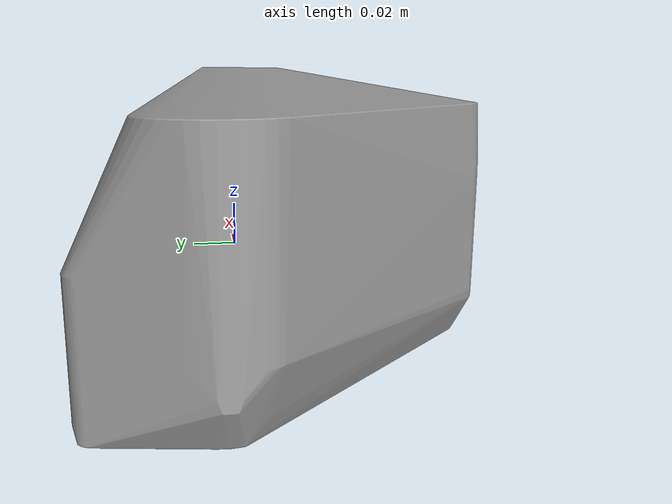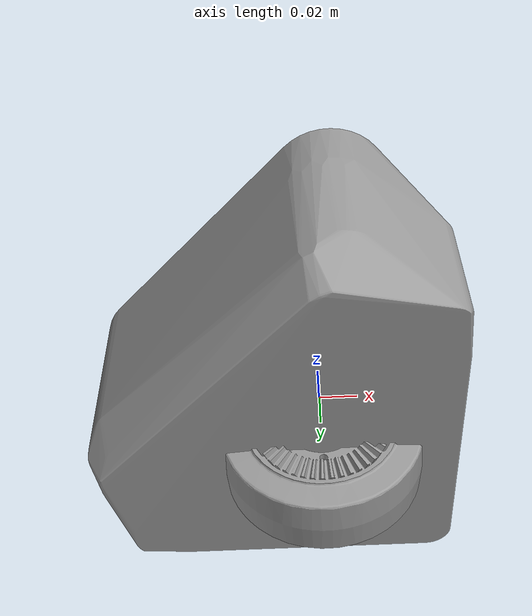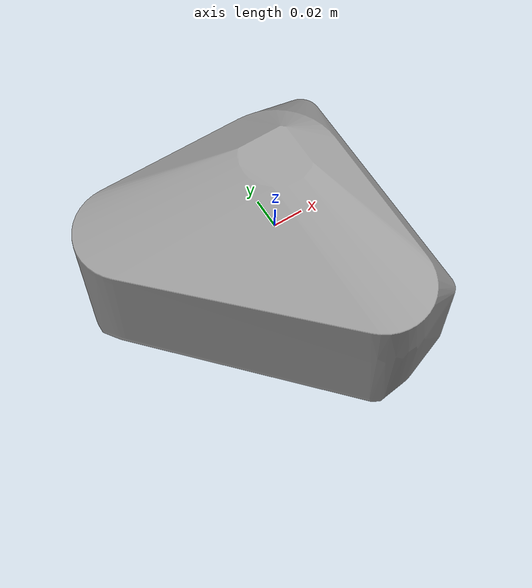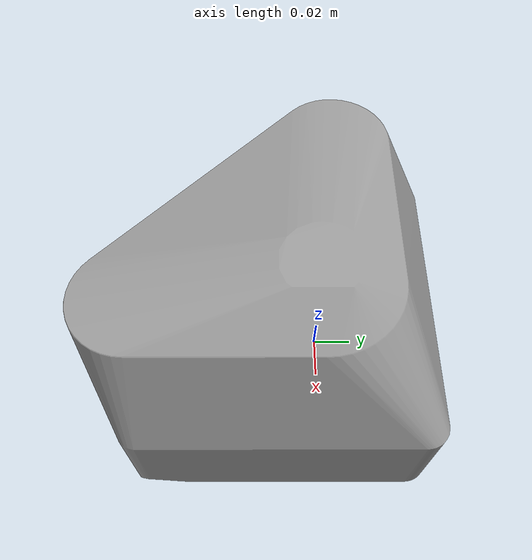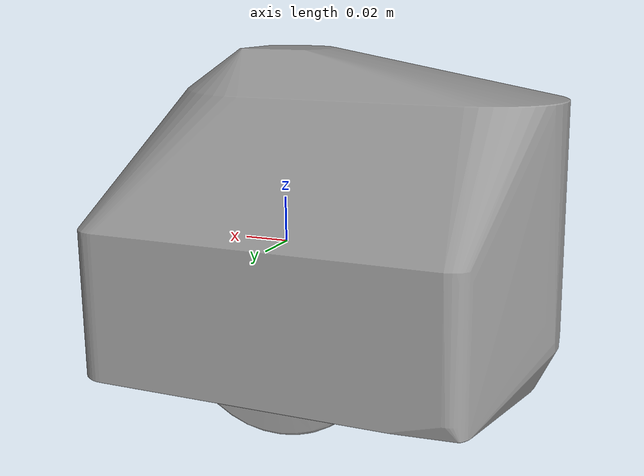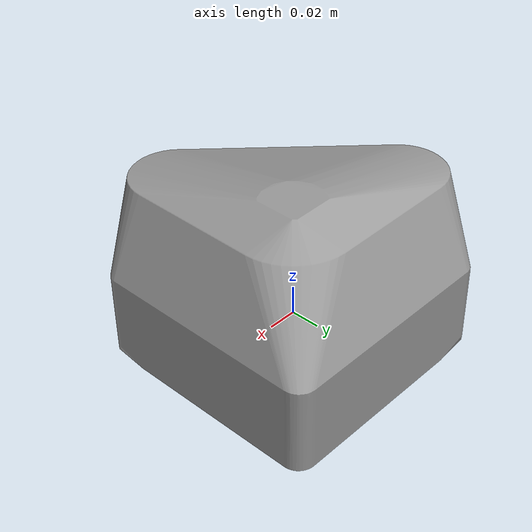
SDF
<?xml version="1.0" ?>
<!-- |    This document was autogenerated by xacro from model.xacro                    | -->
<!-- |    EDITING THIS FILE BY HAND IS NOT RECOMMENDED                                 | -->
<sdf version="1.7">
  <model name="SDS_Module">
    <pose>0 0 0 0 0 0</pose>
    <link name="SDS_Module_Fixed">
      <inertial>
        <mass>2.268</mass>
        <inertia>
          <ixx>0.00760197</ixx>
          <ixy>0</ixy>
          <ixz>0</ixz>
          <iyy>0.00779099</iyy>
          <iyz>0</iyz>
          <izz>0.01281875</izz>
        </inertia>
        <pose>0 0 0 0 -0 0</pose>
      </inertial>
      <pose>6.9e-05 0 0.008921 0 -0 0</pose>
      <gravity>1</gravity>
      <self_collide>0</self_collide>
      <kinematic>0</kinematic>
      <enable_wind>0</enable_wind>
      <visual name="visual">
        <pose>0 0 0 0 -0 0</pose>
        <geometry>
          <mesh>
            <uri>/home/ajahueym/Documents/Gits/Overture-ROS/src/robot_simulation/models/SDS_Module/SDS_Fixed.dae</uri>
            <scale>1 1 1</scale>
          </mesh>
        </geometry>
        <material>
          <lighting>1</lighting>
          <script>
            <uri>file://media/materials/scripts/gazebo.material</uri>
            <name>Gazebo/Grey</name>
          </script>
          <shader type="pixel">
            <normal_map>__default__</normal_map>
          </shader>
          <ambient>0.3 0.3 0.3 1</ambient>
          <diffuse>0.7 0.7 0.7 1</diffuse>
          <specular>0.01 0.01 0.01 1</specular>
          <emissive>0 0 0 1</emissive>
        </material>
        <transparency>0</transparency>
        <cast_shadows>1</cast_shadows>
      </visual>
      <collision name="collision">
        <laser_retro>0</laser_retro>
        <max_contacts>10</max_contacts>
        <pose>0 0 0 0 -0 0</pose>
        <geometry>
          <mesh>
            <uri>/home/ajahueym/Documents/Gits/Overture-ROS/src/robot_simulation/models/SDS_Module/SDS_Fixed_Collision.dae</uri>
            <scale>1 1 1</scale>
          </mesh>
        </geometry>
        <surface>
          <friction>
            <ode>
              <mu>1</mu>
              <mu2>1</mu2>
              <fdir1>0 0 0</fdir1>
              <slip1>0</slip1>
              <slip2>0</slip2>
            </ode>
            <torsional>
              <coefficient>1</coefficient>
              <patch_radius>0</patch_radius>
              <surface_radius>0</surface_radius>
              <use_patch_radius>1</use_patch_radius>
              <ode>
                <slip>0</slip>
              </ode>
            </torsional>
          </friction>
          <bounce>
            <restitution_coefficient>0</restitution_coefficient>
            <threshold>1e+06</threshold>
          </bounce>
          <contact>
            <collide_without_contact>0</collide_without_contact>
            <collide_without_contact_bitmask>1</collide_without_contact_bitmask>
            <collide_bitmask>1</collide_bitmask>
            <ode>
              <soft_cfm>0</soft_cfm>
              <soft_erp>0.2</soft_erp>
              <kp>1e+13</kp>
              <kd>1</kd>
              <max_vel>0.01</max_vel>
              <min_depth>0</min_depth>
            </ode>
            <bullet>
              <split_impulse>1</split_impulse>
              <split_impulse_penetration_threshold>-0.01</split_impulse_penetration_threshold>
              <soft_cfm>0</soft_cfm>
              <soft_erp>0.2</soft_erp>
              <kp>1e+13</kp>
              <kd>1</kd>
            </bullet>
          </contact>
        </surface>
      </collision>
    </link>
    <link name="SDS_Module_Rotation">
      <inertial>
        <mass>0.59</mass>
        <inertia>
          <ixx>0.0006558</ixx>
          <ixy>0</ixy>
          <ixz>0</ixz>
          <iyy>0.00065583</iyy>
          <iyz>0</iyz>
          <izz>0.00074316</izz>
        </inertia>
        <pose>0 0 0 0 -0 0</pose>
      </inertial>
      <pose>6.9e-05 0 0.026037 0 -0 0</pose>
      <gravity>1</gravity>
      <self_collide>0</self_collide>
      <kinematic>0</kinematic>
      <enable_wind>0</enable_wind>
      <visual name="visual">
        <pose>0 0 0 0 -0 0</pose>
        <geometry>
          <mesh>
            <uri>/home/ajahueym/Documents/Gits/Overture-ROS/src/robot_simulation/models/SDS_Module/SDS_Rotation.dae</uri>
            <scale>1 1 1</scale>
          </mesh>
        </geometry>
        <material>
          <lighting>1</lighting>
          <script>
            <uri>file://media/materials/scripts/gazebo.material</uri>
            <name>Gazebo/Grey</name>
          </script>
          <shader type="pixel">
            <normal_map>__default__</normal_map>
          </shader>
          <ambient>0.3 0.3 0.3 1</ambient>
          <diffuse>0.7 0.7 0.7 1</diffuse>
          <specular>0.01 0.01 0.01 1</specular>
          <emissive>0 0 0 1</emissive>
        </material>
        <transparency>0</transparency>
        <cast_shadows>1</cast_shadows>
      </visual>
      <collision name="collision">
        <laser_retro>0</laser_retro>
        <max_contacts>10</max_contacts>
        <pose>0 0 0 0 -0 0</pose>
        <geometry>
          <mesh>
            <uri>/home/ajahueym/Documents/Gits/Overture-ROS/src/robot_simulation/models/SDS_Module/SDS_Rotation_Collision.dae</uri>
            <scale>1 1 1</scale>
          </mesh>
        </geometry>
        <surface>
          <friction>
            <ode>
              <mu>1</mu>
              <mu2>1</mu2>
              <fdir1>0 0 0</fdir1>
              <slip1>0</slip1>
              <slip2>0</slip2>
            </ode>
            <torsional>
              <coefficient>1</coefficient>
              <patch_radius>0</patch_radius>
              <surface_radius>0</surface_radius>
              <use_patch_radius>1</use_patch_radius>
              <ode>
                <slip>0</slip>
              </ode>
            </torsional>
          </friction>
          <bounce>
            <restitution_coefficient>0</restitution_coefficient>
            <threshold>1e+06</threshold>
          </bounce>
          <contact>
            <collide_without_contact>0</collide_without_contact>
            <collide_without_contact_bitmask>1</collide_without_contact_bitmask>
            <collide_bitmask>1</collide_bitmask>
            <ode>
              <soft_cfm>0</soft_cfm>
              <soft_erp>0.2</soft_erp>
              <kp>1e+13</kp>
              <kd>1</kd>
              <max_vel>0.01</max_vel>
              <min_depth>0</min_depth>
            </ode>
            <bullet>
              <split_impulse>1</split_impulse>
              <split_impulse_penetration_threshold>-0.01</split_impulse_penetration_threshold>
              <soft_cfm>0</soft_cfm>
              <soft_erp>0.2</soft_erp>
              <kp>1e+13</kp>
              <kd>1</kd>
            </bullet>
          </contact>
        </surface>
      </collision>
    </link>
    <link name="SDS_Module_Wheel">
      <inertial>
        <mass>0.24</mass>
        <inertia>
          <ixx>0.00025496</ixx>
          <ixy>0</ixy>
          <ixz>0</ixz>
          <iyy>0.00025496</iyy>
          <iyz>0</iyz>
          <izz>0.00018653</izz>
        </inertia>
        <pose>0 0 0 0 -0 0</pose>
      </inertial>
      <pose>-0.000137 0 -0.034957 0 -0 0</pose>
      <gravity>1</gravity>
      <self_collide>0</self_collide>
      <kinematic>0</kinematic>
      <enable_wind>0</enable_wind>
      <visual name="visual">
        <pose>0 0 0 0 -0 0</pose>
        <geometry>
          <mesh>
            <uri>/home/ajahueym/Documents/Gits/Overture-ROS/src/robot_simulation/models/SDS_Module/SDS_Wheel.dae</uri>
            <scale>1 1 1</scale>
          </mesh>
        </geometry>
        <material>
          <lighting>1</lighting>
          <script>
            <uri>file://media/materials/scripts/gazebo.material</uri>
            <name>Gazebo/Grey</name>
          </script>
          <shader type="pixel">
            <normal_map>__default__</normal_map>
          </shader>
          <ambient>0.3 0.3 0.3 1</ambient>
          <diffuse>0.7 0.7 0.7 1</diffuse>
          <specular>0.01 0.01 0.01 1</specular>
          <emissive>0 0 0 1</emissive>
        </material>
        <transparency>0</transparency>
        <cast_shadows>1</cast_shadows>
      </visual>
      <collision name="collision">
        <laser_retro>0</laser_retro>
        <max_contacts>10</max_contacts>
        <pose>0 0 0 0 -0 0</pose>
        <geometry>
          <mesh>
            <uri>/home/ajahueym/Documents/Gits/Overture-ROS/src/robot_simulation/models/SDS_Module/SDS_Wheel_Collision.dae</uri>
            <scale>1 1 1</scale>
          </mesh>
        </geometry>
        <surface>
          <friction>
            <ode>
              <mu>1</mu>
              <mu2>1</mu2>
              <fdir1>0 0 0</fdir1>
              <slip1>0</slip1>
              <slip2>0</slip2>
            </ode>
            <torsional>
              <coefficient>1</coefficient>
              <patch_radius>0</patch_radius>
              <surface_radius>0</surface_radius>
              <use_patch_radius>1</use_patch_radius>
              <ode>
                <slip>0</slip>
              </ode>
            </torsional>
          </friction>
          <bounce>
            <restitution_coefficient>0</restitution_coefficient>
            <threshold>1e+06</threshold>
          </bounce>
          <contact>
            <collide_without_contact>0</collide_without_contact>
            <collide_without_contact_bitmask>1</collide_without_contact_bitmask>
            <collide_bitmask>1</collide_bitmask>
            <ode>
              <soft_cfm>0</soft_cfm>
              <soft_erp>0.2</soft_erp>
              <kp>1e+13</kp>
              <kd>1</kd>
              <max_vel>0.01</max_vel>
              <min_depth>0</min_depth>
            </ode>
            <bullet>
              <split_impulse>1</split_impulse>
              <split_impulse_penetration_threshold>-0.01</split_impulse_penetration_threshold>
              <soft_cfm>0</soft_cfm>
              <soft_erp>0.2</soft_erp>
              <kp>1e+13</kp>
              <kd>1</kd>
            </bullet>
          </contact>
        </surface>
      </collision>
    </link>
    <joint name="SDS_Module_rotation_joint" type="revolute">
      <parent>SDS_Module_Fixed</parent>
      <child>SDS_Module_Rotation</child>
      <pose>0 0 0 0 -0 0</pose>
      <axis>
        <xyz>0 0 1</xyz>
        <limit>
          <lower>-1.79769e+308</lower>
          <upper>1.79769e+308</upper>
          <effort>-1</effort>
          <velocity>-1</velocity>
        </limit>
        <dynamics>
          <spring_reference>0</spring_reference>
          <spring_stiffness>0</spring_stiffness>
          <damping>1.0</damping>
          <friction>0.55</friction>
        </dynamics>
      </axis>
      <physics>
        <ode>
          <limit>
            <cfm>0</cfm>
            <erp>0.2</erp>
          </limit>
          <suspension>
            <cfm>0</cfm>
            <erp>0.2</erp>
          </suspension>
        </ode>
      </physics>
    </joint>
    <joint name="SDS_Module_wheel_joint" type="revolute">
      <parent>SDS_Module_Rotation</parent>
      <child>SDS_Module_Wheel</child>
      <pose>0 0 0 0 -0 0</pose>
      <axis>
        <xyz>0 1 0</xyz>
        <limit>
          <lower>-1.79769e+308</lower>
          <upper>1.79769e+308</upper>
          <effort>-1</effort>
          <velocity>-1</velocity>
        </limit>
        <dynamics>
          <spring_reference>0</spring_reference>
          <spring_stiffness>0</spring_stiffness>
          <damping>0.5</damping>
          <friction>0.15</friction>
        </dynamics>
      </axis>
      <physics>
        <ode>
          <limit>
            <cfm>0</cfm>
            <erp>0.2</erp>
          </limit>
          <suspension>
            <cfm>0</cfm>
            <erp>0.2</erp>
          </suspension>
        </ode>
      </physics>
    </joint>
    <static>0</static>
    <allow_auto_disable>1</allow_auto_disable>
    <plugin filename="libnt_motor_plugin.so" name="NTMotor_SDS_Module_Rotation">
      <joint_name>SDS_Module_rotation_joint</joint_name>
      <joint_axis>0</joint_axis>
      <torque_axis>z</torque_axis>
      <motor_model>FalconFOC</motor_model>
      <motor_count>1</motor_count>
      <gear_ratio>21.4285714286</gear_ratio>
    </plugin>
    <plugin filename="libnt_motor_plugin.so" name="NTMotor_SDS_Module_Wheel">
      <joint_name>SDS_Module_wheel_joint</joint_name>
      <joint_axis>0</joint_axis>
      <torque_axis>y</torque_axis>
      <motor_model>FalconFOC</motor_model>
      <motor_count>1</motor_count>
      <gear_ratio>5.9027777</gear_ratio>
    </plugin>
    <plugin filename="libnt_cancoder_plugin.so" name="NTMotor_SDS_Module_Rotation_CANCoder">
      <joint_name>SDS_Module_rotation_joint</joint_name>
    </plugin>
  </model>
</sdf>
